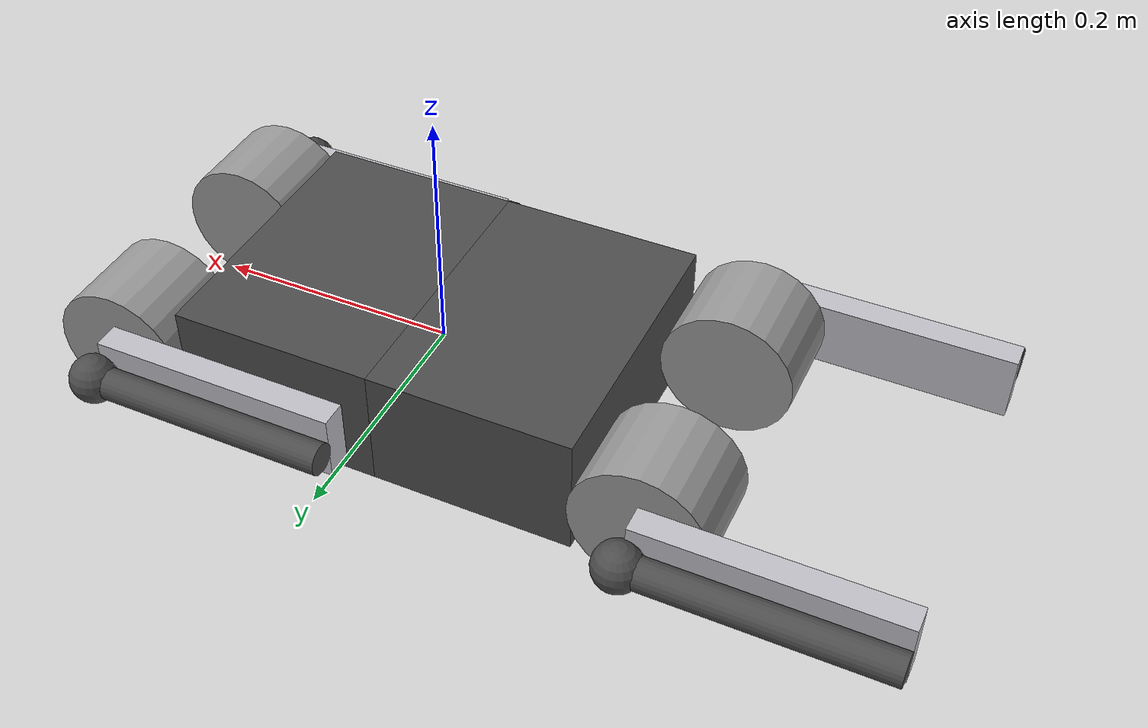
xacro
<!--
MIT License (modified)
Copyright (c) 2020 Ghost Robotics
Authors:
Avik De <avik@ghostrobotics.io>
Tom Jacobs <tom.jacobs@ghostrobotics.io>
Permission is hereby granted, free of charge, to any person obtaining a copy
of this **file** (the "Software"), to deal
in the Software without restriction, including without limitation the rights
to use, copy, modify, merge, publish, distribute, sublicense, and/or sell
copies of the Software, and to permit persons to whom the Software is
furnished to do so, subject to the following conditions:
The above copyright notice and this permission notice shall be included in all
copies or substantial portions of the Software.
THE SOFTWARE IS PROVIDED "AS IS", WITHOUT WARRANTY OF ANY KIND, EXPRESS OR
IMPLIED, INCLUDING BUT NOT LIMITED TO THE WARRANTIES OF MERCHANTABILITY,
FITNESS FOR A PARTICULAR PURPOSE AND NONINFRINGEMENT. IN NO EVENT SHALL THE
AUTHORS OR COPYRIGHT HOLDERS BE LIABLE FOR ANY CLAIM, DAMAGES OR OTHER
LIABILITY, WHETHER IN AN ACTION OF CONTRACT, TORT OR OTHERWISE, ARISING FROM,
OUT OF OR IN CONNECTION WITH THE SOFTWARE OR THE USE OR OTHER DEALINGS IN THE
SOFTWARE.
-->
<?xml version="1.0"?>

<robot xmlns:xacro="http://www.ros.org/wiki/xacro" name="spirit">

	<!-- Define parameters -->
	<!-- bodyLength + hipdx should be equal to front to back hip distance -->
	<!-- dy +  dPodAxisToEdge + upperLegWidth should be equal to the center to toe distance along y axis-->
	<xacro:property name="pi" value="3.14159265359"/>
	<xacro:property name="bodyLength" value="0.335"/>
	<xacro:property name="bodyWidth" value="0.24"/>
	<xacro:property name="bodyHeight" value="0.104"/>
	<xacro:property name="bodyMass" value="5.75"/>
	<xacro:property name="podMass" value="0.575"/>
	<xacro:property name="upperLegMass" value="0.775"/>
	<xacro:property name="upperLegIxx" value="0.00005"/> <!-- guess -->
	<xacro:property name="upperLegIyy" value="0.001"/> <!-- guess -->
	<xacro:property name="upperLegIzz" value="0.001"/> <!-- guess -->
	<xacro:property name="lowerLegMass" value="0.075"/>
	<xacro:property name="lowerLegIxx" value="0.000005"/> <!-- guess -->
	<xacro:property name="lowerLegIyy" value="0.0001"/> <!-- guess -->
	<xacro:property name="lowerLegIzz" value="0.0001"/> <!-- guess -->
	<xacro:property name="toeMass" value="0.015"/>
	<xacro:property name="upperLegLength" value="0.206"/>
	<xacro:property name="upperLegWidth" value="0.022"/>
	<xacro:property name="upperLegHeight" value="0.055"/>
	<xacro:property name="lowerLegLength" value="0.206"/>
	<xacro:property name="lowerLegRadius" value="0.013"/> <!--visual only-->
	<xacro:property name="podLength" value="0.08"/>
	<xacro:property name="podRadius" value="0.055"/>
	<xacro:property name="dPodAxisToEdge" value="0.028"/> <!--center of pod cylinder to the ab axis-->
	<xacro:property name="abOffs" value="0.10098"/>
	<xacro:property name="dx" value="0.2263"/>
	<xacro:property name="dy" value="0.07"/>
	<xacro:property name="toeRadius" value="0.02"/>
	<xacro:property name="toeOffset" value="0.0"/>
	<xacro:property name="toeStiffness" value="30000.0"/>
	<xacro:property name="toeDamping" value="1000.0"/>
	<xacro:property name="toeSpinningFriction" value="0.3"/>
	<xacro:property name="toeFriction" value="100.0"/>
	<xacro:property name="toeLateralFriction" value="50.0"/>
	<xacro:property name="abKinLimit" value="0.707"/>
	<xacro:property name="abSpeedLimit" value="30"/>
	<xacro:property name="abEffortLimit" value="40"/>
	<xacro:property name="jointSpeedLimit" value="30"/>
	<xacro:property name="jointEffortLimit" value="40"/>
	<!-- Additional limb: tail or neck-->
	<xacro:property name="neckAttachmentX" value="0.16"/>
	<xacro:property name="neckLength1" value="0.3"/>
	<xacro:property name="neckLength2" value="0.05"/>
	<xacro:property name="neckWidth" value="0.03"/>
	<xacro:property name="neckHeight" value="0.03"/>
	<xacro:property name="neckDensity1" value="100.0"/>
	<xacro:property name="neckDensity2" value="10.0"/>
	<xacro:property name="objMass" value="0.01"/>

	<!-- Body -->
	<link name="body">
		<visual>
			<origin rpy="0 0 0" xyz="${bodyLength/4} 0 0"/>
			<geometry>
				<box size="${bodyLength/2} ${bodyWidth} ${bodyHeight}"/>
			</geometry>
			<material name="darkgray"/>
		</visual>

		<inertial>
			<origin rpy="0 0 0" xyz="${bodyLength/4} 0 0"/>
			<mass value="${bodyMass}"/>
			<!-- Uniform box -->
			<inertia ixx="0.05"  ixy="0"  ixz="0" iyy="0.1" iyz="0" izz="0.1" />
		</inertial>

		<!-- Just copy geometry for collision -->
		<collision>
			<origin rpy="0 0 0" xyz="${bodyLength/4} 0 0"/>
			<geometry>
				<box size="${bodyLength/2} ${bodyWidth} ${bodyHeight}"/>
			</geometry>
		</collision>
	</link>
	<gazebo reference="body">
    	<material>Gazebo/Black</material>
        <gravity>true</gravity>
  	</gazebo>

	<link name="body2">
		<visual>
			<origin rpy="0 0 0" xyz="${-bodyLength/4} 0 0"/>
			<geometry>
				<box size="${bodyLength/2} ${bodyWidth} ${bodyHeight}"/>
			</geometry>
			<material name="darkgray"/>
		</visual>

		<inertial>
			<origin rpy="0 0 0" xyz="${-bodyLength/4} 0 0"/>
			<mass value="${bodyMass}"/>
			<!-- Uniform box -->
			<inertia ixx="0.05"  ixy="0"  ixz="0" iyy="0.1" iyz="0" izz="0.1" />
		</inertial>

		<!-- Just copy geometry for collision -->
		<collision>
			<origin rpy="0 0 0" xyz="${-bodyLength/4} 0 0"/>
			<geometry>
				<box size="${bodyLength/2} ${bodyWidth} ${bodyHeight}"/>
			</geometry>
		</collision>
	</link>
	<gazebo reference="body2">
    	<material>Gazebo/Grey</material>
        <gravity>true</gravity>
  	</gazebo>

	<!-- Define our leg macro -->
	<xacro:macro name="leg" params="suffix left front hipJointName kneeJointName abductionJointName hipJointLowerLimit hipJointUpperLimit color bodylink">

		<!-- Hip motor -->
		<link name="hip${suffix}">
			<visual>
				<origin rpy="${pi/2} 0 0" xyz="${front * 0} ${left * (dPodAxisToEdge)} 0"/>
				<geometry>
					<cylinder length="${podLength}" radius="${podRadius}"/>
				</geometry>
			</visual>

			<collision>
				<origin rpy="${pi/2} 0 0" xyz="0 ${left * (dPodAxisToEdge)} 0"/>
				<geometry>Radius
					<box size="${2*podRadius} ${2*podRadius} ${podLength}"/>
				</geometry>
			</collision>

			<inertial>
				<origin rpy="0 0 0" xyz="0 ${left * (dPodAxisToEdge)} 0"/>
				<mass value="${podMass}"/>
				<inertia ixx="0.00066963541"  ixy="0"  ixz="0" iyy="0.00066963541" iyz="0" izz="0.0008696875" />
			</inertial>

		</link>
		<gazebo reference="hip${suffix}">
			<material>Gazebo/Grey</material>
  		</gazebo>
		<!-- Upper leg -->
		<link name="upper${suffix}">
			<visual>
				<origin rpy="0 0 0" xyz="-${upperLegLength/2} ${-left*upperLegWidth} 0"/>
				<geometry>
					<box size="${upperLegLength} ${upperLegWidth} ${upperLegHeight}"/>
				</geometry>
				<material name="silver"/>
			</visual>

			<collision>
				<origin rpy="0 0 0" xyz="-${upperLegLength/2} ${-left*upperLegWidth} 0"/>
				<geometry>
					<box size="${upperLegLength} ${upperLegWidth} ${upperLegHeight}"/>
				</geometry>
			</collision>
			<inertial>
				<origin rpy="0 0 0" xyz="-${upperLegLength/2} ${-left*upperLegWidth} 0"/>
				<mass value="${upperLegMass}"/>
				<inertia ixx="${upperLegIxx}"  ixy="0" ixz="0" iyy="${upperLegIyy}" iyz="0" izz="${upperLegIzz}"/>
			</inertial>
		</link>
		<gazebo reference="upper${suffix}">
			<material>Gazebo/DarkGrey</material>
  		</gazebo>
		<!-- Abduction joint. Joint names are: 8 9 10 11 -->
		<joint name="${abductionJointName}" type="revolute">
			<parent link="${bodylink}"/>
			<child link="hip${suffix}"/>
			<axis xyz="1 0 0"/>
			<origin xyz="${front *bodyLength/2+front * podRadius} ${left *bodyWidth/2+left*upperLegWidth-left*podLength} 0"/>

			<limit effort="${abEffortLimit}" velocity="${abSpeedLimit}" lower="${-abKinLimit}" upper="${abKinLimit}"/>
			<dynamics damping="0.0" friction="0.0"/>
		</joint>
		<!-- Transmission elements required for Gazebo -->
		<transmission name="transmission_${abductionJointName}">
    		<type>transmission_interface/SimpleTransmission</type>
    		<joint name="${abductionJointName}">
      			<hardwareInterface>hardware_interface/EffortJointInterface</hardwareInterface>
    		</joint>
    		<actuator name="motor_${abductionJointName}">
      			<hardwareInterface>EffortJointInterface</hardwareInterface>
      			<mechanicalReduction>1</mechanicalReduction>
    		</actuator>
  		</transmission>
		<!-- Hip joint. (Motor to upper leg). Joint names are: 0 2 4 6 -->
		<joint name="${hipJointName}" type="revolute">
			<parent link="hip${suffix}"/>
			<child link="upper${suffix}"/>
			<axis xyz="0 -1 0"/>
			<origin xyz="${front * 0} ${left * abOffs} 0"/> <!--  rpy="0 -0.3 0" -->
			<limit effort="${jointEffortLimit}" velocity="${jointSpeedLimit}" lower="${hipJointLowerLimit}" upper="${hipJointUpperLimit}"/>
			<dynamics damping="0.0" friction="0.0"/>
		</joint>

		<!-- Transmission elements required for Gazebo -->
		<transmission name="transmission_${hipJointName}">
    		<type>transmission_interface/SimpleTransmission</type>
    		<joint name="${hipJointName}">
      			<hardwareInterface>hardware_interface/EffortJointInterface</hardwareInterface>
    		</joint>
    		<actuator name="motor_${hipJointName}">
      			<hardwareInterface>EffortJointInterface</hardwareInterface>
      			<mechanicalReduction>1</mechanicalReduction>
    		</actuator>
  		</transmission>
		<!-- Lower leg -->
		<link name="lower${suffix}">
			<visual>
				<origin rpy="0 ${pi/2} 0" xyz="${lowerLegLength/2} 0 0"/>
				<geometry>
					<cylinder length="${lowerLegLength}" radius="${lowerLegRadius}"/>
				</geometry>
				<material name="darkgray"/>
			</visual>

			<collision>
				<origin rpy="0 ${pi/2} 0" xyz="${lowerLegLength/2} 0 0"/>
				<geometry>
					<cylinder length="${lowerLegLength}" radius="${lowerLegRadius}"/>
				</geometry>
			</collision>

			<inertial>
				<origin rpy="0 ${pi/2} 0" xyz="${lowerLegLength/2} 0 0"/>
				<mass value="${lowerLegMass}"/>
				<inertia ixx="${lowerLegIxx}"  ixy="0" ixz="0" iyy="${lowerLegIyy}" iyz="0" izz="${lowerLegIzz}"/>
			</inertial>
		</link>
		<gazebo reference="lower${suffix}">
			<material>Gazebo/Grey</material>
  		</gazebo>

  		<!-- Knee joint. Joint names are: 1 3 5 7 -->
		<joint name="${kneeJointName}" type="revolute">
			<parent link="upper${suffix}"/>
			<child link="lower${suffix}"/>
			<axis xyz="0 1 0"/>
			<origin xyz="-${upperLegLength} 0 0"/> <!--rpy="0 0.5 0"-->
			<limit effort="${jointEffortLimit}" velocity="${jointSpeedLimit}" lower="0" upper="${pi}"/>
			<dynamics damping="0.0" friction="0.0"/>
		</joint>
		<!-- Transmission elements required for Gazebo -->
		<transmission name="transmission_${kneeJointName}">
    		<type>transmission_interface/SimpleTransmission</type>
    		<joint name="${kneeJointName}">
      			<hardwareInterface>hardware_interface/EffortJointInterface</hardwareInterface>
    		</joint>
    		<actuator name="motor_${kneeJointName}">
      			<hardwareInterface>EffortJointInterface</hardwareInterface>
      			<mechanicalReduction>1</mechanicalReduction>
    		</actuator>
  		</transmission>
<!-- Toe -->
		<link name="toe${suffix}">
			<contact>
				<friction_anchor/>
				<stiffness value="${toeStiffness}"/>
				<damping value="${toeDamping}"/>
				<spinning_friction value="${toeSpinningFriction}"/>
				<lateral_friction value="${toeLateralFriction}"/>
			</contact>
			<visual>
				<origin rpy="0 0 0" xyz="0 0 0"/>
				<geometry>
					<sphere radius="${toeRadius}"/>
				</geometry>
				<material name="darkgray"/>
			</visual>

			<collision>
				<origin rpy="0 0 0" xyz="0 0 0"/>
				<geometry>
					<sphere radius="${toeRadius}"/>
				</geometry>
			</collision>

			<inertial>
				<mass value="${toeMass}"/>
				<inertia ixx="0.000025"  ixy="0"  ixz="0" iyy="0.000025" iyz="0" izz="0.000025" />
			</inertial>
		</link>
		<gazebo reference="toe${suffix}">
    		<material>Gazebo/Black</material>
			<collision>
				<surface>
					<bounce>
						<restitution_coefficient>0</restitution_coefficient>
						<threshold>1e+06</threshold>
					</bounce>
					<friction>
						<torsional>
							<coefficient>${toeSpinningFriction}</coefficient>
						</torsional>
						<ode>
							<mu>${toeFriction}</mu>
							<mu2>${toeLateralFriction}</mu2>
						</ode>
						<bullet>
							<rolling_friction>${toeSpinningFriction}</rolling_friction>
							<friction2>${toeLateralFriction}</friction2>
						</bullet>
					</friction>
					<contact>
						<bullet>
							<kp>${toeStiffness}</kp>
							<kd>${toeDamping}</kd>
						</bullet>
						<ode>
							<kp>${toeStiffness}</kp>
							<kd>${toeDamping}</kd>
						</ode>
					</contact>
				</surface>
			</collision>
			<sensor name='toe${suffix}_contact' type='contact'>
                <plugin name='toe${suffix}_plugin' filename='libgazebo_ros_bumper.so'>
                    <alwaysOn>1</alwaysOn>
                    <updateRate>1000</updateRate>
                    <bumperTopicName>gazebo/toe${suffix}_contact_state</bumperTopicName>
                    <frameName>world</frameName>
                    <robotNamespace>/</robotNamespace>
                </plugin>
                <contact>
                    <collision>toe${suffix}_collision</collision>
                    <topic>__default_topic__</topic>
                </contact>
                <update_rate>1000</update_rate>
            </sensor>
  		</gazebo>
	</xacro:macro>
	<xacro:leg suffix="0" hipJointName="0" kneeJointName="1" abductionJointName="8" front="1" left="1" hipJointLowerLimit="${-2*pi}" hipJointUpperLimit="${2*pi}" color="darkgray" bodylink="body"/>
 	<xacro:leg suffix="1" hipJointName="2" kneeJointName="3" abductionJointName="9" front="-1" left="1" hipJointLowerLimit="${-2*pi}" hipJointUpperLimit="${2*pi}" color="darkgray" bodylink="body2"/>
 	<xacro:leg suffix="2" hipJointName="4" kneeJointName="5" abductionJointName="10" front="1" left="-1" hipJointLowerLimit="${-2*pi}" hipJointUpperLimit="${2*pi}" color="red" bodylink="body"/>
 	<xacro:leg suffix="3" hipJointName="6" kneeJointName="7" abductionJointName="11" front="-1" left="-1" hipJointLowerLimit="${-2*pi}" hipJointUpperLimit="${2*pi}" color="darkgray" bodylink="body2"/>

  	<link name="imu::link">
    	<visual>
      		<origin rpy="0 0 0" xyz="0 0 0"/>
      		<geometry>
        		<sphere radius="0.02"/>
      		</geometry>
      		<material name="gray"/>
    	</visual>
    	<inertial>
      		<mass value="0.001"/>
      		<inertia ixx="0.0001" ixy="0" ixz="0" iyy="0" iyz="0" izz="0"/>
    	</inertial>
  	</link>
  	<gazebo reference="imu::link">
    	<material>Gazebo/Gray</material>
    	<sensor name='imu_sensor' type='imu'>
            <always_on>1</always_on>
            <update_rate>100</update_rate>
            <visualize>1</visualize>
            <topic>__default_topic__</topic>
            <plugin name='imu_plugin' filename='libgazebo_ros_imu_sensor.so'>
                <topicName>/mcu/state/imu</topicName>
                <bodyName>imu::link</bodyName>
                <robotNamespace>/</robotNamespace>
                <updateRateHZ>500.0</updateRateHZ>
                <gaussianNoise>0.0</gaussianNoise>
                <xyzOffset>0 0 0</xyzOffset>
                <rpyOffset>0 0 0</rpyOffset>
                <frameName>imu::link</frameName>
                <initialOrientationAsReference>0</initialOrientationAsReference>
            </plugin>
            <pose frame=''>0 0 0 0 -0 0</pose>
            <imu/>
    	</sensor>
  	</gazebo>

	<joint name="body_tail_joint_0" type="revolute">
   		<parent link="body"/>
    	<child link="body2"/>
    	<axis xyz="0 1 0"/>
    	<origin xyz="0 0 0"/>
    	<limit effort="35" lower="-0.5" upper="0.5" velocity="1000000"/>
    	<dynamics damping="0.0" friction="0.0"/>
  	</joint>
	 <!-- Transmission elements required for Gazebo -->
  	<transmission name="transmission_body_tail_joint_0">
    	<type>transmission_interface/SimpleTransmission</type>
    	<joint name="body_tail_joint_0">
      		<hardwareInterface>hardware_interface/EffortJointInterface</hardwareInterface>
    	</joint>
    	<actuator name="motor_body_tail_joint_0">
      		<hardwareInterface>EffortJointInterface</hardwareInterface>
      		<mechanicalReduction>1</mechanicalReduction>
    	</actuator>
  	</transmission>

	<link name="tail_link_1">
		<visual>
			<origin rpy="0 0 0" xyz="0 0 0"/>
			<geometry>
				<sphere radius="0.01"/>
			</geometry>
			<material name="darkgray"/>
		</visual>

		<inertial>
			<mass value="0.001"/>
			<inertia ixx="0.0001" ixy="0" ixz="0" iyy="0.0001" iyz="0" izz="0.0001"/>
		</inertial>

		<!-- Just copy geometry for collision -->
	</link>
	<gazebo reference="tail_link_1">
    	<material>Gazebo/Gray</material>
  	</gazebo>

  	<link name="tail_mass">
    	<visual>
      		<origin rpy="0 0 0" xyz="0 0 0"/>
      		<geometry>
        		<sphere radius="0.01"/>
      		</geometry>
      		<material name="gray"/>
    	</visual>
    	<inertial>
      		<mass value="0.001"/>
      		<inertia ixx="0.001" ixy="0" ixz="0" iyy="0" iyz="0" izz="0"/>
    	</inertial>
		<collision>
		    <origin rpy="0 0 0" xyz="0 0 0"/>
			<geometry>
				<sphere radius="0.02"/>
			</geometry>
		</collision>
  	</link>
  	<gazebo reference="tail_mass">
    	<material>Gazebo/Gray</material>
  	</gazebo>

	<joint name="body_tail_joint_1" type="revolute">
    	<parent link="body2"/>
    	<child link="tail_link_1"/>
    	<axis xyz="0 1 0"/>
    	<origin xyz="0 0 0"/>
    	<limit effort="35" lower="-1.57" upper="-1.5" velocity="1000000"/>
    	<dynamics damping="0.0" friction="0.0"/>
  	</joint>
	<!-- Transmission elements required for Gazebo -->
  	<transmission name="transmission_body_tail_joint_1">
    	<type>transmission_interface/SimpleTransmission</type>
    	<joint name="body_tail_joint_1">
      		<hardwareInterface>hardware_interface/EffortJointInterface</hardwareInterface>
    	</joint>
    	<actuator name="motor_body_tail_joint_1">
      		<hardwareInterface>EffortJointInterface</hardwareInterface>
      		<mechanicalReduction>1</mechanicalReduction>
    	</actuator>
  	</transmission>
	<joint name="tail_link_mass_joint" type="fixed">
    	<parent link="tail_link_1"/>
    	<child link="tail_mass"/>
    	<origin xyz="0 0 0"/>
    	<dynamics damping="0.0" friction="0.0"/>
  	</joint>
  	<gazebo reference="tail_link_mass_joint">
        <disableFixedJointLumping>1</disableFixedJointLumping>
        <preserveFixedJoint>1</preserveFixedJoint>
    </gazebo>

    <xacro:macro name="jtoes" params="suffix">
  		<joint name="jtoe${suffix}" type="fixed">
			<parent link="lower${suffix}"/>
			<child link="toe${suffix}"/>
			<origin xyz="${lowerLegLength} 0 -${toeOffset}"/>
			<dynamics damping="0.0" friction="0.0"/>
		</joint>
		<gazebo reference="jtoe${suffix}">
            <disableFixedJointLumping>1</disableFixedJointLumping>
            <preserveFixedJoint>1</preserveFixedJoint>
        </gazebo>
	</xacro:macro>
	<xacro:jtoes suffix="0"/>
 	<xacro:jtoes suffix="1" />
 	<xacro:jtoes suffix="2" />
 	<xacro:jtoes suffix="3" />
	<joint name="imu_joint" type="fixed">
    	<parent link="body"/>
		<child link="imu::link"/>
	</joint>
	<gazebo reference="imu_joint">
        <disableFixedJointLumping>1</disableFixedJointLumping>
        <preserveFixedJoint>1</preserveFixedJoint>
    </gazebo>

	<!--    CUSTOMIZED SECTIONS	ABOVE. NOT FROM GHOST ROBOTICS.    -->
	<!-- Add ros_control plugin -->
	<gazebo>
  		<plugin name="gazebo_ros_control" filename="libgazebo_ros_control.so">
    		<robotNamespace>/spirit</robotNamespace>
	        <controlPeriod>0.002</controlPeriod>
  		</plugin>
	    <plugin name='ground_truth_estimator' filename='libground_truth_estimator.so'>
            <updateRateHZ>500.0</updateRateHZ>
            <robotNamespace>/</robotNamespace>
        </plugin>
	</gazebo>
</robot>
